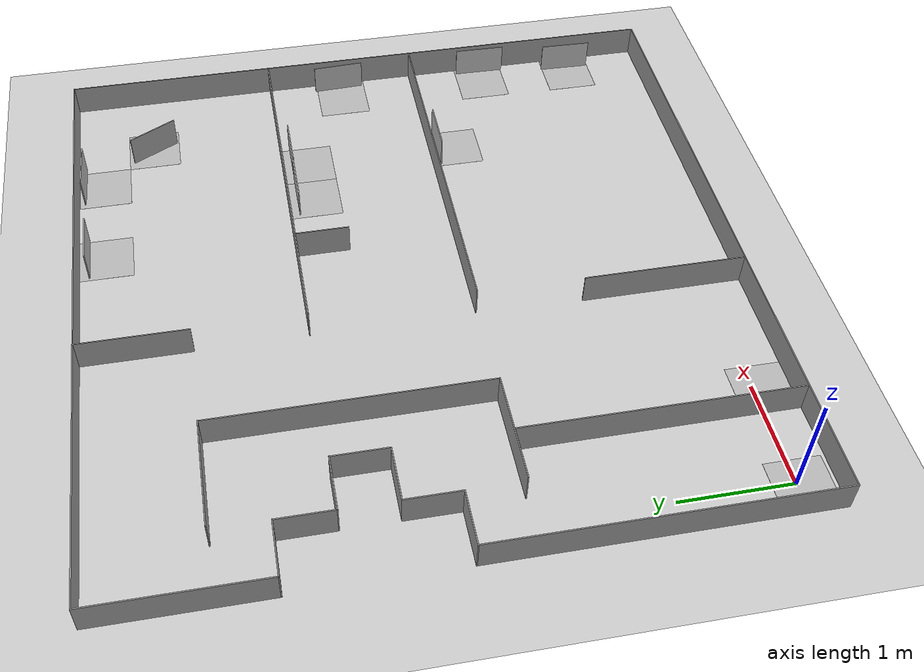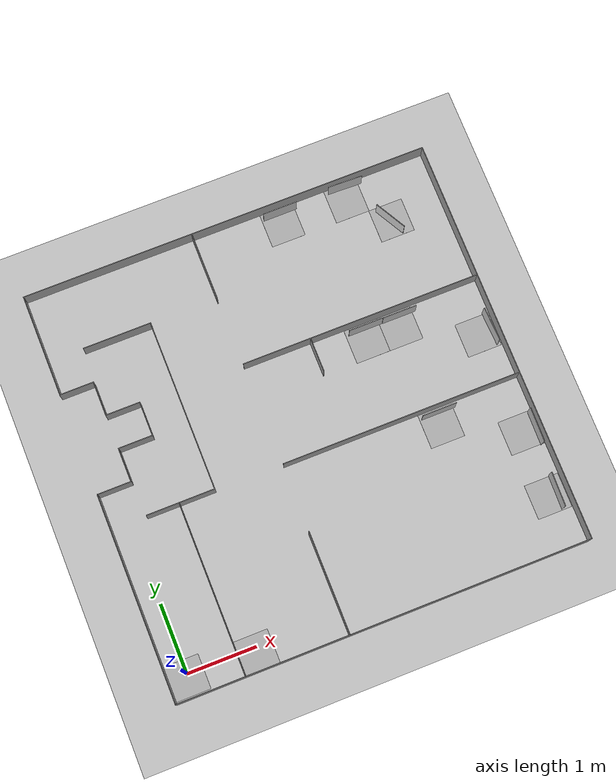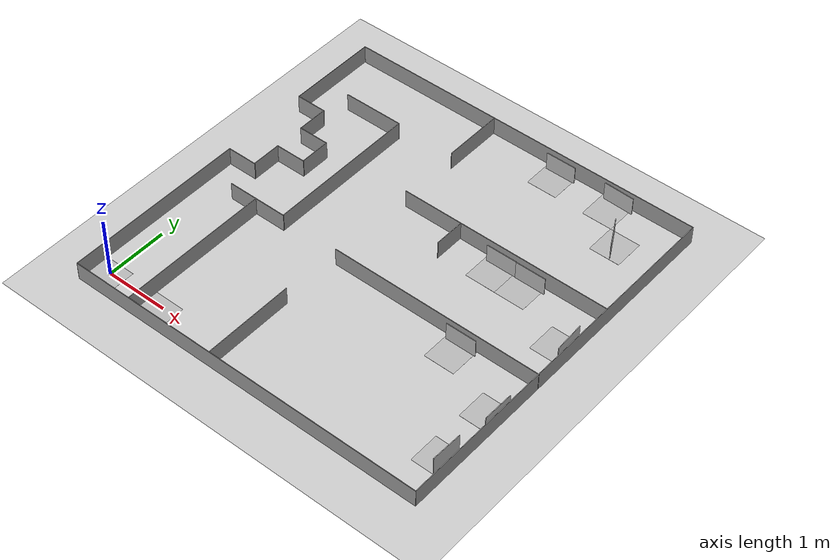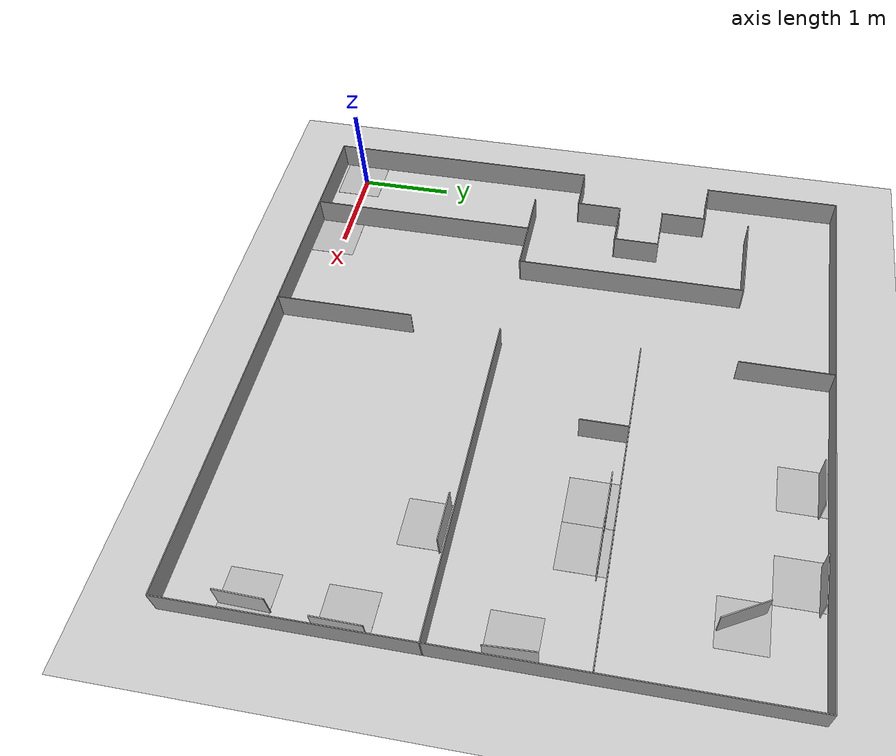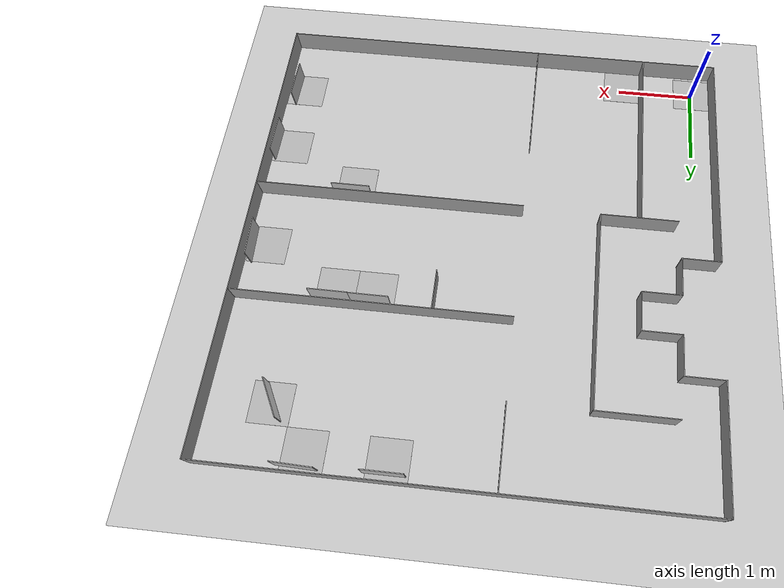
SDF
<sdf version="1.6">
 <world name="default">
  <light name="sun" type="directional">
   <pose>0 0 10 0 -0 0</pose>
   <diffuse>0.8 0.8 0.8 1</diffuse>
   <specular>0.2 0.2 0.2 1</specular>
   <attenuation>
    <range>1000</range>
    <constant>0.9</constant>
    <linear>0.01</linear>
    <quadratic>0.001</quadratic>
   </attenuation>
   <direction>-0.5 0.1 -0.9</direction>
  </light>
  <model name="ground_plane">
   <static>1</static>
   <link name="link">
    <collision name="collision">
     <geometry><plane><normal>0 0 1</normal><size>100 100</size></plane></geometry>
     <surface>
      <contact><collide_bitmask>65535</collide_bitmask></contact>
      <friction><ode><mu>100</mu><mu2>50</mu2></ode></friction>
     </surface>
    </collision>
    <visual name="visual">
     <cast_shadows>0</cast_shadows>
     <geometry><plane><normal>0 0 1</normal><size>100 100</size></plane></geometry>
     <material>
      <script><uri>file://media/materials/scripts/gazebo.material</uri><name>Gazebo/Grey</name></script>
     </material>
    </visual>
   </link>
  </model>
  <gravity>0 0 -9.8</gravity>
  <magnetic_field>6e-06 2.3e-05 -4.2e-05</magnetic_field>
  <atmosphere type="adiabatic"/>
  <physics name="default_physics" default="0" type="ode">
   <max_step_size>0.001</max_step_size>
   <real_time_factor>1</real_time_factor>
   <real_time_update_rate>1000</real_time_update_rate>
  </physics>
  <scene><ambient>0.4 0.4 0.4 1</ambient><background>0.7 0.7 0.7 1</background><shadows>1</shadows></scene>
  <audio><device>default</device></audio>
  <spherical_coordinates>
   <surface_model>EARTH_WGS84</surface_model>
   <latitude_deg>0</latitude_deg>
   <longitude_deg>0</longitude_deg>
   <elevation>0</elevation>
   <heading_deg>0</heading_deg>
  </spherical_coordinates>
  <model name="arena">
   <pose>2.72717 2.66142 0 0 -0 0</pose>
   <link name="Wall_1">
    <collision name="Wall_1_Collision">
     <geometry><box><size>6 0.01 0.3</size></box></geometry>
     <pose>0 0 0.15 0 -0 0</pose>
    </collision>
    <visual name="Wall_1_Visual">
     <pose>0 0 0.15 0 -0 0</pose>
     <geometry><box><size>6 0.01 0.3</size></box></geometry>
     <material>
      <script><uri>file://media/materials/scripts/gazebo.material</uri><name>Gazebo/Grey</name></script>
      <ambient>1 1 1 1</ambient>
     </material>
     <meta><layer>0</layer></meta>
    </visual>
    <pose>0.001988 -2.99751 0 0 -0 0</pose>
   </link>
   <link name="Wall_11">
    <collision name="Wall_11_Collision">
     <geometry><box><size>1.5 0.01 0.3</size></box></geometry>
     <pose>0 0 0.15 0 -0 0</pose>
    </collision>
    <visual name="Wall_11_Visual">
     <pose>0 0 0.15 0 -0 0</pose>
     <geometry><box><size>1.5 0.01 0.3</size></box></geometry>
     <material>
      <script><uri>file://media/materials/scripts/gazebo.material</uri><name>Gazebo/Grey</name></script>
      <ambient>1 1 1 1</ambient>
     </material>
     <meta><layer>0</layer></meta>
    </visual>
    <pose>-2.99841 2.25251 0 0 -0 1.5708</pose>
   </link>
   <link name="Wall_20">
    <collision name="Wall_20_Collision">
     <geometry><box><size>0.5 0.01 0.3</size></box></geometry>
     <pose>0 0 0.15 0 -0 0</pose>
    </collision>
    <visual name="Wall_20_Visual">
     <pose>0 0 0.15 0 -0 0</pose>
     <geometry><box><size>0.5 0.01 0.3</size></box></geometry>
     <material>
      <script><uri>file://media/materials/scripts/gazebo.material</uri><name>Gazebo/Grey</name></script>
      <ambient>1 1 1 1</ambient>
     </material>
     <meta><layer>0</layer></meta>
    </visual>
    <pose>-2.75425 1.50057 0 0 -0 0</pose>
   </link>
   <link name="Wall_22">
    <collision name="Wall_22_Collision">
     <geometry><box><size>0.5 0.01 0.3</size></box></geometry>
     <pose>0 0 0.15 0 -0 0</pose>
    </collision>
    <visual name="Wall_22_Visual">
     <pose>0 0 0.15 0 -0 0</pose>
     <geometry><box><size>0.5 0.01 0.3</size></box></geometry>
     <material>
      <script><uri>file://media/materials/scripts/gazebo.material</uri><name>Gazebo/Grey</name></script>
      <ambient>1 1 1 1</ambient>
     </material>
     <meta><layer>0</layer></meta>
    </visual>
    <pose>-2.50969 1.25495 0 0 -0 1.5708</pose>
   </link>
   <link name="Wall_24">
    <collision name="Wall_24_Collision">
     <geometry><box><size>0.5 0.01 0.3</size></box></geometry>
     <pose>0 0 0.15 0 -0 0</pose>
    </collision>
    <visual name="Wall_24_Visual">
     <pose>0 0 0.15 0 -0 0</pose>
     <geometry><box><size>0.5 0.01 0.3</size></box></geometry>
     <material>
      <script><uri>file://media/materials/scripts/gazebo.material</uri><name>Gazebo/Grey</name></script>
      <ambient>1 1 1 1</ambient>
     </material>
     <meta><layer>0</layer></meta>
    </visual>
    <pose>-2.26459 1.00122 0 0 -0 0</pose>
   </link>
   <link name="Wall_28">
    <collision name="Wall_28_Collision">
     <geometry><box><size>0.5 0.01 0.3</size></box></geometry>
     <pose>0 0 0.15 0 -0 0</pose>
    </collision>
    <visual name="Wall_28_Visual">
     <pose>0 0 0.15 0 -0 0</pose>
     <geometry><box><size>0.5 0.01 0.3</size></box></geometry>
     <material>
      <script><uri>file://media/materials/scripts/gazebo.material</uri><name>Gazebo/Grey</name></script>
      <ambient>1 1 1 1</ambient>
     </material>
     <meta><layer>0</layer></meta>
    </visual>
    <pose>-2.01503 0.755808 0 0 -0 -1.5708</pose>
   </link>
   <link name="Wall_30">
    <collision name="Wall_30_Collision">
     <geometry><box><size>0.5 0.01 0.3</size></box></geometry>
     <pose>0 0 0.15 0 -0 0</pose>
    </collision>
    <visual name="Wall_30_Visual">
     <pose>0 0 0.15 0 -0 0</pose>
     <geometry><box><size>0.5 0.01 0.3</size></box></geometry>
     <material>
      <script><uri>file://media/materials/scripts/gazebo.material</uri><name>Gazebo/Grey</name></script>
      <ambient>1 1 1 1</ambient>
     </material>
     <meta><layer>0</layer></meta>
    </visual>
    <pose>-2.25991 0.503524 0 0 -0 0</pose>
   </link>
   <link name="Wall_34">
    <collision name="Wall_34_Collision">
     <geometry><box><size>0.5 0.01 0.3</size></box></geometry>
     <pose>0 0 0.15 0 -0 0</pose>
    </collision>
    <visual name="Wall_34_Visual">
     <pose>0 0 0.15 0 -0 0</pose>
     <geometry><box><size>0.5 0.01 0.3</size></box></geometry>
     <material>
      <script><uri>file://media/materials/scripts/gazebo.material</uri><name>Gazebo/Grey</name></script>
      <ambient>1 1 1 1</ambient>
     </material>
     <meta><layer>0</layer></meta>
    </visual>
    <pose>-2.50907 0.257403 0 0 -0 -1.5708</pose>
   </link>
   <link name="Wall_36">
    <collision name="Wall_36_Collision">
     <geometry><box><size>0.5 0.01 0.3</size></box></geometry>
     <pose>0 0 0.15 0 -0 0</pose>
    </collision>
    <visual name="Wall_36_Visual">
     <pose>0 0 0.15 0 -0 0</pose>
     <geometry><box><size>0.5 0.01 0.3</size></box></geometry>
     <material>
      <script><uri>file://media/materials/scripts/gazebo.material</uri><name>Gazebo/Grey</name></script>
      <ambient>1 1 1 1</ambient>
     </material>
     <meta><layer>0</layer></meta>
    </visual>
    <pose>-2.75227 0.011599 0 0 -0 0</pose>
   </link>
   <link name="Wall_38">
    <collision name="Wall_38_Collision">
     <geometry><box><size>3.012 0.01 0.3</size></box></geometry>
     <pose>0 0 0.15 0 -0 0</pose>
    </collision>
    <visual name="Wall_38_Visual">
     <pose>0 0 0.15 0 -0 0</pose>
     <geometry><box><size>3.012 0.01 0.3</size></box></geometry>
     <material>
      <script><uri>file://media/materials/scripts/gazebo.material</uri><name>Gazebo/Grey</name></script>
      <ambient>1 1 1 1</ambient>
     </material>
     <meta><layer>0</layer></meta>
    </visual>
    <pose>-2.99601 -1.49551 0 0 -0 -1.5708</pose>
   </link>
   <link name="Wall_41">
    <collision name="Wall_41_Collision">
     <geometry><box><size>1 0.01 0.3</size></box></geometry>
     <pose>0 0 0.15 0 -0 0</pose>
    </collision>
    <visual name="Wall_41_Visual">
     <pose>0 0 0.15 0 -0 0</pose>
     <geometry><box><size>1 0.01 0.3</size></box></geometry>
     <material>
      <script><uri>file://media/materials/scripts/gazebo.material</uri><name>Gazebo/Grey</name></script>
      <ambient>1 1 1 1</ambient>
     </material>
     <meta><layer>0</layer></meta>
    </visual>
    <pose>-0.498279 2.49812 0 0 -0 1.5708</pose>
   </link>
   <link name="Wall_44">
    <collision name="Wall_44_Collision">
     <geometry><box><size>3.5 0.01 0.3</size></box></geometry>
     <pose>0 0 0.15 0 -0 0</pose>
    </collision>
    <visual name="Wall_44_Visual">
     <pose>0 0 0.15 0 -0 0</pose>
     <geometry><box><size>3.5 0.01 0.3</size></box></geometry>
     <material>
      <script><uri>file://media/materials/scripts/gazebo.material</uri><name>Gazebo/Grey</name></script>
      <ambient>1 1 1 1</ambient>
     </material>
     <meta><layer>0</layer></meta>
    </visual>
    <pose>1.25071 0.982331 0 0 -0 0</pose>
   </link>
   <link name="Wall_46">
    <collision name="Wall_46_Collision">
     <geometry><box><size>0.5 0.01 0.3</size></box></geometry>
     <pose>0 0 0.15 0 -0 0</pose>
    </collision>
    <visual name="Wall_46_Visual">
     <pose>0 0 0.15 0 -0 0</pose>
     <geometry><box><size>0.5 0.01 0.3</size></box></geometry>
     <material>
      <script><uri>file://media/materials/scripts/gazebo.material</uri><name>Gazebo/Grey</name></script>
      <ambient>1 1 1 1</ambient>
     </material>
     <meta><layer>0</layer></meta>
    </visual>
    <pose>0.496275 0.729352 0 0 -0 1.5708</pose>
   </link>
   <link name="Wall_48">
    <collision name="Wall_48_Collision">
     <geometry><box><size>3.5 0.01 0.3</size></box></geometry>
     <pose>0 0 0.15 0 -0 0</pose>
    </collision>
    <visual name="Wall_48_Visual">
     <pose>0 0 0.15 0 -0 0</pose>
     <geometry><box><size>3.5 0.01 0.3</size></box></geometry>
     <material>
      <script><uri>file://media/materials/scripts/gazebo.material</uri><name>Gazebo/Grey</name></script>
      <ambient>1 1 1 1</ambient>
     </material>
     <meta><layer>0</layer></meta>
    </visual>
    <pose>1.25425 -0.520404 0 0 -0 0</pose>
   </link>
   <link name="Wall_50">
    <collision name="Wall_50_Collision">
     <geometry><box><size>1.5 0.01 0.3</size></box></geometry>
     <pose>0 0 0.15 0 -0 0</pose>
    </collision>
    <visual name="Wall_50_Visual">
     <pose>0 0 0.15 0 -0 0</pose>
     <geometry><box><size>1.5 0.01 0.3</size></box></geometry>
     <material>
      <script><uri>file://media/materials/scripts/gazebo.material</uri><name>Gazebo/Grey</name></script>
      <ambient>1 1 1 1</ambient>
     </material>
     <meta><layer>0</layer></meta>
    </visual>
    <pose>-0.512233 -2.25115 0 0 -0 -1.5708</pose>
   </link>
   <link name="Wall_52">
    <collision name="Wall_52_Collision">
     <geometry><box><size>2.5 0.01 0.3</size></box></geometry>
     <pose>0 0 0.15 0 -0 0</pose>
    </collision>
    <visual name="Wall_52_Visual">
     <pose>0 0 0.15 0 -0 0</pose>
     <geometry><box><size>2.5 0.01 0.3</size></box></geometry>
     <material>
      <script><uri>file://media/materials/scripts/gazebo.material</uri><name>Gazebo/Grey</name></script>
      <ambient>1 1 1 1</ambient>
     </material>
     <meta><layer>0</layer></meta>
    </visual>
    <pose>-2.00505 -1.74423 0 0 -0 -1.5708</pose>
   </link>
   <link name="Wall_54">
    <collision name="Wall_54_Collision">
     <geometry><box><size>1 0.01 0.3</size></box></geometry>
     <pose>0 0 0.15 0 -0 0</pose>
    </collision>
    <visual name="Wall_54_Visual">
     <pose>0 0 0.15 0 -0 0</pose>
     <geometry><box><size>1 0.01 0.3</size></box></geometry>
     <material>
      <script><uri>file://media/materials/scripts/gazebo.material</uri><name>Gazebo/Grey</name></script>
      <ambient>1 1 1 1</ambient>
     </material>
     <meta><layer>0</layer></meta>
    </visual>
    <pose>-1.98078 -0.499121 0 0 -0 0</pose>
   </link>
   <link name="Wall_56">
    <collision name="Wall_56_Collision">
     <geometry><box><size>2.5 0.01 0.3</size></box></geometry>
     <pose>0 0 0.15 0 -0 0</pose>
    </collision>
    <visual name="Wall_56_Visual">
     <pose>0 0 0.15 0 -0 0</pose>
     <geometry><box><size>2.5 0.01 0.3</size></box></geometry>
     <material>
      <script><uri>file://media/materials/scripts/gazebo.material</uri><name>Gazebo/Grey</name></script>
      <ambient>1 1 1 1</ambient>
     </material>
     <meta><layer>0</layer></meta>
    </visual>
    <pose>-1.48616 0.751059 0 0 -0 -1.5708</pose>
   </link>
   <link name="Wall_58">
    <collision name="Wall_58_Collision">
     <geometry><box><size>1 0.01 0.3</size></box></geometry>
     <pose>0 0 0.15 0 -0 0</pose>
    </collision>
    <visual name="Wall_58_Visual">
     <pose>0 0 0.15 0 -0 0</pose>
     <geometry><box><size>1 0.01 0.3</size></box></geometry>
     <material>
      <script><uri>file://media/materials/scripts/gazebo.material</uri><name>Gazebo/Grey</name></script>
      <ambient>1 1 1 1</ambient>
     </material>
     <meta><layer>0</layer></meta>
    </visual>
    <pose>-1.9786 2.00012 0 0 -0 0</pose>
   </link>
   <link name="Wall_6">
    <collision name="Wall_6_Collision">
     <geometry><box><size>6 0.01 0.3</size></box></geometry>
     <pose>0 0 0.15 0 -0 0</pose>
    </collision>
    <visual name="Wall_6_Visual">
     <pose>0 0 0.15 0 -0 0</pose>
     <geometry><box><size>6 0.01 0.3</size></box></geometry>
     <material>
      <script><uri>file://media/materials/scripts/gazebo.material</uri><name>Gazebo/Grey</name></script>
      <ambient>1 1 1 1</ambient>
     </material>
     <meta><layer>0</layer></meta>
    </visual>
    <pose>2.99837 -0.000334 0 0 -0 -1.5708</pose>
   </link>
   <link name="Wall_8">
    <collision name="Wall_8_Collision">
     <geometry><box><size>6 0.01 0.3</size></box></geometry>
     <pose>0 0 0.15 0 -0 0</pose>
    </collision>
    <visual name="Wall_8_Visual">
     <pose>0 0 0.15 0 -0 0</pose>
     <geometry><box><size>6 0.01 0.3</size></box></geometry>
     <material>
      <script><uri>file://media/materials/scripts/gazebo.material</uri><name>Gazebo/Grey</name></script>
      <ambient>1 1 1 1</ambient>
     </material>
     <meta><layer>0</layer></meta>
    </visual>
    <pose>-0.003034 2.99691 0 0 -0 0</pose>
   </link>
   <static>1</static>
  </model>
  <model name="start_plane">
   <static>1</static>
   <link name="link">
    <collision name="collision">
     <geometry><plane><normal>0 0 1</normal><size>0.5 0.5</size></plane></geometry>
     <surface><friction><ode><mu>100</mu><mu2>50</mu2></ode></friction></surface>
    </collision>
    <visual name="visual">
     <cast_shadows>0</cast_shadows>
     <geometry><plane><normal>0 0 1</normal><size>0.5 0.5</size></plane></geometry>
     <material>
      <script>
       <uri>model://start_plane/materials/scripts</uri>
       <uri>model://start_plane/materials/textures/</uri>
       <name>StartPlane/Image</name>
      </script>
     </material>
    </visual>
   </link>
   <pose>-0.018469 -0.051337 0 0 -0 0</pose>
  </model>
  <model name="end_plane">
   <static>1</static>
   <link name="link">
    <collision name="collision">
     <geometry><plane><normal>0 0 1</normal><size>0.5 0.5</size></plane></geometry>
     <surface><friction><ode><mu>100</mu><mu2>50</mu2></ode></friction></surface>
    </collision>
    <visual name="visual">
     <cast_shadows>0</cast_shadows>
     <geometry><plane><normal>0 0 1</normal><size>0.5 0.5</size></plane></geometry>
     <material>
      <script>
       <uri>model://end_plane/materials/scripts</uri>
       <uri>model://end_plane/materials/textures/</uri>
       <name>EndPlane/Image</name>
      </script>
     </material>
    </visual>
   </link>
   <pose>0.969955 -0.083763 0 0 -0 0</pose>
  </model>
  <model name="end_plane_2">
   <static>1</static>
   <link name="link">
    <collision name="collision">
     <geometry><plane><normal>0 0 1</normal><size>0.5 0.5</size></plane></geometry>
     <surface><friction><ode><mu>100</mu><mu2>50</mu2></ode></friction></surface>
    </collision>
    <visual name="visual">
     <cast_shadows>0</cast_shadows>
     <geometry><plane><normal>0 0 1</normal><size>0.5 0.5</size></plane></geometry>
     <material>
      <script>
       <uri>model://end_plane/materials/scripts</uri>
       <uri>model://end_plane/materials/textures/</uri>
       <name>EndPlane/Image</name>
      </script>
     </material>
    </visual>
   </link>
   <pose>4.47135 5.4022 0 0 -0 0</pose>
  </model>
  <model name="end_plane_1">
   <static>1</static>
   <link name="link">
    <collision name="collision">
     <geometry><plane><normal>0 0 1</normal><size>0.5 0.5</size></plane></geometry>
     <surface><friction><ode><mu>100</mu><mu2>50</mu2></ode></friction></surface>
    </collision>
    <visual name="visual">
     <cast_shadows>0</cast_shadows>
     <geometry><plane><normal>0 0 1</normal><size>0.5 0.5</size></plane></geometry>
     <material>
      <script>
       <uri>model://end_plane/materials/scripts</uri>
       <uri>model://end_plane/materials/textures/</uri>
       <name>EndPlane/Image</name>
      </script>
     </material>
    </visual>
   </link>
   <pose>5.45751 2.89676 0 0 -0 0</pose>
  </model>
  <model name="end_plane_0">
   <static>1</static>
   <link name="link">
    <collision name="collision">
     <geometry><plane><normal>0 0 1</normal><size>0.5 0.5</size></plane></geometry>
     <surface><friction><ode><mu>100</mu><mu2>50</mu2></ode></friction></surface>
    </collision>
    <visual name="visual">
     <cast_shadows>0</cast_shadows>
     <geometry><plane><normal>0 0 1</normal><size>0.5 0.5</size></plane></geometry>
     <material>
      <script>
       <uri>model://end_plane/materials/scripts</uri>
       <uri>model://end_plane/materials/textures/</uri>
       <name>EndPlane/Image</name>
      </script>
     </material>
    </visual>
   </link>
   <pose>5.47441 1.38885 0 0 -0 0</pose>
  </model>
  <model name="end_plane_4">
   <static>1</static>
   <link name="link">
    <collision name="collision">
     <geometry><plane><normal>0 0 1</normal><size>0.5 0.5</size></plane></geometry>
     <surface><friction><ode><mu>100</mu><mu2>50</mu2></ode></friction></surface>
    </collision>
    <visual name="visual">
     <cast_shadows>0</cast_shadows>
     <geometry><plane><normal>0 0 1</normal><size>0.5 0.5</size></plane></geometry>
     <material>
      <script>
       <uri>model://end_plane/materials/scripts</uri>
       <uri>model://end_plane/materials/textures/</uri>
       <name>EndPlane/Image</name>
      </script>
     </material>
    </visual>
   </link>
   <pose>3.4935 5.40484 0 0 -0 0</pose>
  </model>
  <model name="end_plane_3">
   <static>1</static>
   <link name="link">
    <collision name="collision">
     <geometry><plane><normal>0 0 1</normal><size>0.5 0.5</size></plane></geometry>
     <surface><friction><ode><mu>100</mu><mu2>50</mu2></ode></friction></surface>
    </collision>
    <visual name="visual">
     <cast_shadows>0</cast_shadows>
     <geometry><plane><normal>0 0 1</normal><size>0.5 0.5</size></plane></geometry>
     <material>
      <script>
       <uri>model://end_plane/materials/scripts</uri>
       <uri>model://end_plane/materials/textures/</uri>
       <name>EndPlane/Image</name>
      </script>
     </material>
    </visual>
   </link>
   <pose>4.96459 4.90196 0 0 -0 0</pose>
  </model>
  <model name="end_plane_6">
   <static>1</static>
   <link name="link">
    <collision name="collision">
     <geometry><plane><normal>0 0 1</normal><size>0.5 0.5</size></plane></geometry>
     <surface><friction><ode><mu>100</mu><mu2>50</mu2></ode></friction></surface>
    </collision>
    <visual name="visual">
     <cast_shadows>0</cast_shadows>
     <geometry><plane><normal>0 0 1</normal><size>0.5 0.5</size></plane></geometry>
     <material>
      <script>
       <uri>model://end_plane/materials/scripts</uri>
       <uri>model://end_plane/materials/textures/</uri>
       <name>EndPlane/Image</name>
      </script>
     </material>
    </visual>
   </link>
   <pose>3.97499 3.38665 0 0 -0 0</pose>
  </model>
  <model name="end_plane_5">
   <static>1</static>
   <link name="link">
    <collision name="collision">
     <geometry><plane><normal>0 0 1</normal><size>0.5 0.5</size></plane></geometry>
     <surface><friction><ode><mu>100</mu><mu2>50</mu2></ode></friction></surface>
    </collision>
    <visual name="visual">
     <cast_shadows>0</cast_shadows>
     <geometry><plane><normal>0 0 1</normal><size>0.5 0.5</size></plane></geometry>
     <material>
      <script>
       <uri>model://end_plane/materials/scripts</uri>
       <uri>model://end_plane/materials/textures/</uri>
       <name>EndPlane/Image</name>
      </script>
     </material>
    </visual>
   </link>
   <pose>4.4716 3.38614 0 0 -0 0</pose>
  </model>
  <model name="end_plane_7">
   <static>1</static>
   <link name="link">
    <collision name="collision">
     <geometry><plane><normal>0 0 1</normal><size>0.5 0.5</size></plane></geometry>
     <surface><friction><ode><mu>100</mu><mu2>50</mu2></ode></friction></surface>
    </collision>
    <visual name="visual">
     <cast_shadows>0</cast_shadows>
     <geometry><plane><normal>0 0 1</normal><size>0.5 0.5</size></plane></geometry>
     <material>
      <script>
       <uri>model://end_plane/materials/scripts</uri>
       <uri>model://end_plane/materials/textures/</uri>
       <name>EndPlane/Image</name>
      </script>
     </material>
    </visual>
   </link>
   <pose>4.47818 1.88654 0 0 -0 0</pose>
  </model>
  <model name="end_plane_9">
   <static>1</static>
   <link name="link">
    <collision name="collision">
     <geometry><plane><normal>0 0 1</normal><size>0.5 0.5</size></plane></geometry>
     <surface><friction><ode><mu>100</mu><mu2>50</mu2></ode></friction></surface>
    </collision>
    <visual name="visual">
     <cast_shadows>0</cast_shadows>
     <geometry><plane><normal>0 0 1</normal><size>0.5 0.5</size></plane></geometry>
     <material>
      <script>
       <uri>model://end_plane/materials/scripts</uri>
       <uri>model://end_plane/materials/textures/</uri>
       <name>EndPlane/Image</name>
      </script>
     </material>
    </visual>
   </link>
   <pose>5.46392 0.435037 0 0 -0 0</pose>
  </model>
  <model name="07-burger">
   <link name="link_0">
    <inertial>
     <mass>1</mass>
     <inertia>
      <ixx>0.166667</ixx>
      <ixy>0</ixy>
      <ixz>0</ixz>
      <iyy>0.166667</iyy>
      <iyz>0</iyz>
      <izz>0.166667</izz>
     </inertia>
    </inertial>
    <visual name="visual">
     <geometry><box><size>0.5 0.01 0.3</size></box></geometry>
     <material>
      <script>
       <uri>model://07-burger/materials/scripts</uri>
       <uri>model://07-burger/materials/textures/</uri>
       <name>Targets/07-burger</name>
      </script>
     </material>
    </visual>
    <collision name="collision">
     <geometry><box><size>0.5 0.01 0.3</size></box></geometry>
     <surface>
      <friction>
       <ode><mu>1</mu><mu2>1</mu2><fdir1>0 0 0</fdir1><slip1>0</slip1><slip2>0</slip2></ode>
       <torsional>
        <coefficient>1</coefficient>
        <patch_radius>0</patch_radius>
        <surface_radius>0</surface_radius>
        <use_patch_radius>1</use_patch_radius>
        <ode><slip>0</slip></ode>
       </torsional>
      </friction>
      <bounce><restitution_coefficient>0</restitution_coefficient><threshold>1e+06</threshold></bounce>
      <contact>
       <collide_without_contact>0</collide_without_contact>
       <collide_without_contact_bitmask>1</collide_without_contact_bitmask>
       <collide_bitmask>1</collide_bitmask>
       <ode>
        <soft_cfm>0</soft_cfm>
        <soft_erp>0.2</soft_erp>
        <kp>1e+13</kp>
        <kd>1</kd>
        <max_vel>0.01</max_vel>
        <min_depth>0</min_depth>
       </ode>
       <bullet>
        <split_impulse>1</split_impulse>
        <split_impulse_penetration_threshold>-0.01</split_impulse_penetration_threshold>
        <soft_cfm>0</soft_cfm>
        <soft_erp>0.2</soft_erp>
        <kp>1e+13</kp>
        <kd>1</kd>
       </bullet>
      </contact>
     </surface>
    </collision>
   </link>
   <static>0</static>
   <pose>4.51905 5.58895 0.149996 0 0 -0.03029</pose>
  </model>
  <model name="08-chair">
   <link name="link_0">
    <inertial>
     <mass>1</mass>
     <inertia>
      <ixx>0.166667</ixx>
      <ixy>0</ixy>
      <ixz>0</ixz>
      <iyy>0.166667</iyy>
      <iyz>0</iyz>
      <izz>0.166667</izz>
     </inertia>
    </inertial>
    <visual name="visual">
     <geometry><box><size>0.5 0.01 0.3</size></box></geometry>
     <material>
      <script>
       <uri>model://08-chair/materials/scripts</uri>
       <uri>model://08-chair/materials/textures/</uri>
       <name>Targets/08-chair</name>
      </script>
     </material>
    </visual>
    <collision name="collision">
     <geometry><box><size>0.5 0.01 0.3</size></box></geometry>
     <surface>
      <friction>
       <ode><mu>1</mu><mu2>1</mu2><fdir1>0 0 0</fdir1><slip1>0</slip1><slip2>0</slip2></ode>
       <torsional>
        <coefficient>1</coefficient>
        <patch_radius>0</patch_radius>
        <surface_radius>0</surface_radius>
        <use_patch_radius>1</use_patch_radius>
        <ode><slip>0</slip></ode>
       </torsional>
      </friction>
      <bounce><restitution_coefficient>0</restitution_coefficient><threshold>1e+06</threshold></bounce>
      <contact>
       <collide_without_contact>0</collide_without_contact>
       <collide_without_contact_bitmask>1</collide_without_contact_bitmask>
       <collide_bitmask>1</collide_bitmask>
       <ode>
        <soft_cfm>0</soft_cfm>
        <soft_erp>0.2</soft_erp>
        <kp>1e+13</kp>
        <kd>1</kd>
        <max_vel>0.01</max_vel>
        <min_depth>0</min_depth>
       </ode>
       <bullet>
        <split_impulse>1</split_impulse>
        <split_impulse_penetration_threshold>-0.01</split_impulse_penetration_threshold>
        <soft_cfm>0</soft_cfm>
        <soft_erp>0.2</soft_erp>
        <kp>1e+13</kp>
        <kd>1</kd>
       </bullet>
      </contact>
     </surface>
    </collision>
   </link>
   <static>0</static>
   <pose>3.52036 5.56245 0.149997 -2e-06 -0 -0</pose>
  </model>
  <model name="08-table">
   <link name="link_0">
    <inertial>
     <mass>1</mass>
     <inertia>
      <ixx>0.166667</ixx>
      <ixy>0</ixy>
      <ixz>0</ixz>
      <iyy>0.166667</iyy>
      <iyz>0</iyz>
      <izz>0.166667</izz>
     </inertia>
    </inertial>
    <visual name="visual">
     <geometry><box><size>0.5 0.01 0.3</size></box></geometry>
     <material>
      <script>
       <uri>model://08-table/materials/scripts</uri>
       <uri>model://08-table/materials/textures/</uri>
       <name>Targets/08-table</name>
      </script>
     </material>
    </visual>
    <collision name="collision">
     <geometry><box><size>0.5 0.01 0.3</size></box></geometry>
     <surface>
      <friction>
       <ode><mu>1</mu><mu2>1</mu2><fdir1>0 0 0</fdir1><slip1>0</slip1><slip2>0</slip2></ode>
       <torsional>
        <coefficient>1</coefficient>
        <patch_radius>0</patch_radius>
        <surface_radius>0</surface_radius>
        <use_patch_radius>1</use_patch_radius>
        <ode><slip>0</slip></ode>
       </torsional>
      </friction>
      <bounce><restitution_coefficient>0</restitution_coefficient><threshold>1e+06</threshold></bounce>
      <contact>
       <collide_without_contact>0</collide_without_contact>
       <collide_without_contact_bitmask>1</collide_without_contact_bitmask>
       <collide_bitmask>1</collide_bitmask>
       <ode>
        <soft_cfm>0</soft_cfm>
        <soft_erp>0.2</soft_erp>
        <kp>1e+13</kp>
        <kd>1</kd>
        <max_vel>0.01</max_vel>
        <min_depth>0</min_depth>
       </ode>
       <bullet>
        <split_impulse>1</split_impulse>
        <split_impulse_penetration_threshold>-0.01</split_impulse_penetration_threshold>
        <soft_cfm>0</soft_cfm>
        <soft_erp>0.2</soft_erp>
        <kp>1e+13</kp>
        <kd>1</kd>
       </bullet>
      </contact>
     </surface>
    </collision>
   </link>
   <static>0</static>
   <pose>4.92758 4.8875 0.149998 -1e-06 -0 -1.06851</pose>
  </model>
  <model name="04-tv-2">
   <link name="link_0">
    <inertial>
     <mass>1</mass>
     <inertia>
      <ixx>0.166667</ixx>
      <ixy>0</ixy>
      <ixz>0</ixz>
      <iyy>0.166667</iyy>
      <iyz>0</iyz>
      <izz>0.166667</izz>
     </inertia>
    </inertial>
    <visual name="visual">
     <geometry><box><size>0.5 0.01 0.3</size></box></geometry>
     <material>
      <script>
       <uri>model://04-tv-2/materials/scripts</uri>
       <uri>model://04-tv-2/materials/textures/</uri>
       <name>Targets/04-tv-2</name>
      </script>
     </material>
    </visual>
    <collision name="collision">
     <geometry><box><size>0.5 0.01 0.3</size></box></geometry>
     <surface>
      <friction>
       <ode><mu>1</mu><mu2>1</mu2><fdir1>0 0 0</fdir1><slip1>0</slip1><slip2>0</slip2></ode>
       <torsional>
        <coefficient>1</coefficient>
        <patch_radius>0</patch_radius>
        <surface_radius>0</surface_radius>
        <use_patch_radius>1</use_patch_radius>
        <ode><slip>0</slip></ode>
       </torsional>
      </friction>
      <bounce><restitution_coefficient>0</restitution_coefficient><threshold>1e+06</threshold></bounce>
      <contact>
       <collide_without_contact>0</collide_without_contact>
       <collide_without_contact_bitmask>1</collide_without_contact_bitmask>
       <collide_bitmask>1</collide_bitmask>
       <ode>
        <soft_cfm>0</soft_cfm>
        <soft_erp>0.2</soft_erp>
        <kp>1e+13</kp>
        <kd>1</kd>
        <max_vel>0.01</max_vel>
        <min_depth>0</min_depth>
       </ode>
       <bullet>
        <split_impulse>1</split_impulse>
        <split_impulse_penetration_threshold>-0.01</split_impulse_penetration_threshold>
        <soft_cfm>0</soft_cfm>
        <soft_erp>0.2</soft_erp>
        <kp>1e+13</kp>
        <kd>1</kd>
       </bullet>
      </contact>
     </surface>
    </collision>
   </link>
   <static>0</static>
   <pose>4.01532 3.54813 0.149997 -1e-06 0 0</pose>
  </model>
  <model name="04-tv-1">
   <link name="link_0">
    <inertial>
     <mass>1</mass>
     <inertia>
      <ixx>0.166667</ixx>
      <ixy>0</ixy>
      <ixz>0</ixz>
      <iyy>0.166667</iyy>
      <iyz>0</iyz>
      <izz>0.166667</izz>
     </inertia>
    </inertial>
    <visual name="visual">
     <geometry><box><size>0.5 0.01 0.3</size></box></geometry>
     <material>
      <script>
       <uri>model://04-tv-1/materials/scripts</uri>
       <uri>model://04-tv-1/materials/textures/</uri>
       <name>Targets/04-tv-1</name>
      </script>
     </material>
    </visual>
    <collision name="collision">
     <geometry><box><size>0.5 0.01 0.3</size></box></geometry>
     <surface>
      <friction>
       <ode><mu>1</mu><mu2>1</mu2><fdir1>0 0 0</fdir1><slip1>0</slip1><slip2>0</slip2></ode>
       <torsional>
        <coefficient>1</coefficient>
        <patch_radius>0</patch_radius>
        <surface_radius>0</surface_radius>
        <use_patch_radius>1</use_patch_radius>
        <ode><slip>0</slip></ode>
       </torsional>
      </friction>
      <bounce><restitution_coefficient>0</restitution_coefficient><threshold>1e+06</threshold></bounce>
      <contact>
       <collide_without_contact>0</collide_without_contact>
       <collide_without_contact_bitmask>1</collide_without_contact_bitmask>
       <collide_bitmask>1</collide_bitmask>
       <ode>
        <soft_cfm>0</soft_cfm>
        <soft_erp>0.2</soft_erp>
        <kp>1e+13</kp>
        <kd>1</kd>
        <max_vel>0.01</max_vel>
        <min_depth>0</min_depth>
       </ode>
       <bullet>
        <split_impulse>1</split_impulse>
        <split_impulse_penetration_threshold>-0.01</split_impulse_penetration_threshold>
        <soft_cfm>0</soft_cfm>
        <soft_erp>0.2</soft_erp>
        <kp>1e+13</kp>
        <kd>1</kd>
       </bullet>
      </contact>
     </surface>
    </collision>
   </link>
   <static>0</static>
   <pose>4.51801 3.54454 0.149993 -1e-06 0 0</pose>
  </model>
  <model name="02-dog">
   <link name="link_0">
    <inertial>
     <mass>1</mass>
     <inertia>
      <ixx>0.166667</ixx>
      <ixy>0</ixy>
      <ixz>0</ixz>
      <iyy>0.166667</iyy>
      <iyz>0</iyz>
      <izz>0.166667</izz>
     </inertia>
    </inertial>
    <visual name="visual">
     <geometry><box><size>0.5 0.01 0.3</size></box></geometry>
     <material>
      <script>
       <uri>model://02-dog/materials/scripts</uri>
       <uri>model://02-dog/materials/textures/</uri>
       <name>Targets/02-dog</name>
      </script>
     </material>
    </visual>
    <collision name="collision">
     <geometry><box><size>0.5 0.01 0.3</size></box></geometry>
     <surface>
      <friction>
       <ode><mu>1</mu><mu2>1</mu2><fdir1>0 0 0</fdir1><slip1>0</slip1><slip2>0</slip2></ode>
       <torsional>
        <coefficient>1</coefficient>
        <patch_radius>0</patch_radius>
        <surface_radius>0</surface_radius>
        <use_patch_radius>1</use_patch_radius>
        <ode><slip>0</slip></ode>
       </torsional>
      </friction>
      <bounce><restitution_coefficient>0</restitution_coefficient><threshold>1e+06</threshold></bounce>
      <contact>
       <collide_without_contact>0</collide_without_contact>
       <collide_without_contact_bitmask>1</collide_without_contact_bitmask>
       <collide_bitmask>1</collide_bitmask>
       <ode>
        <soft_cfm>0</soft_cfm>
        <soft_erp>0.2</soft_erp>
        <kp>1e+13</kp>
        <kd>1</kd>
        <max_vel>0.01</max_vel>
        <min_depth>0</min_depth>
       </ode>
       <bullet>
        <split_impulse>1</split_impulse>
        <split_impulse_penetration_threshold>-0.01</split_impulse_penetration_threshold>
        <soft_cfm>0</soft_cfm>
        <soft_erp>0.2</soft_erp>
        <kp>1e+13</kp>
        <kd>1</kd>
       </bullet>
      </contact>
     </surface>
    </collision>
   </link>
   <static>0</static>
   <pose>5.64156 2.91445 0.149997 -2e-06 -0 -1.5255</pose>
  </model>
  <model name="08-table_0">
   <link name="link_0">
    <inertial>
     <mass>1</mass>
     <inertia>
      <ixx>0.166667</ixx>
      <ixy>0</ixy>
      <ixz>0</ixz>
      <iyy>0.166667</iyy>
      <iyz>0</iyz>
      <izz>0.166667</izz>
     </inertia>
    </inertial>
    <visual name="visual">
     <geometry><box><size>0.5 0.01 0.3</size></box></geometry>
     <material>
      <script>
       <uri>model://08-table/materials/scripts</uri>
       <uri>model://08-table/materials/textures/</uri>
       <name>Targets/08-table</name>
      </script>
     </material>
    </visual>
    <collision name="collision">
     <geometry><box><size>0.5 0.01 0.3</size></box></geometry>
     <surface>
      <friction>
       <ode><mu>1</mu><mu2>1</mu2><fdir1>0 0 0</fdir1><slip1>0</slip1><slip2>0</slip2></ode>
       <torsional>
        <coefficient>1</coefficient>
        <patch_radius>0</patch_radius>
        <surface_radius>0</surface_radius>
        <use_patch_radius>1</use_patch_radius>
        <ode><slip>0</slip></ode>
       </torsional>
      </friction>
      <bounce><restitution_coefficient>0</restitution_coefficient><threshold>1e+06</threshold></bounce>
      <contact>
       <collide_without_contact>0</collide_without_contact>
       <collide_without_contact_bitmask>1</collide_without_contact_bitmask>
       <collide_bitmask>1</collide_bitmask>
       <ode>
        <soft_cfm>0</soft_cfm>
        <soft_erp>0.2</soft_erp>
        <kp>1e+13</kp>
        <kd>1</kd>
        <max_vel>0.01</max_vel>
        <min_depth>0</min_depth>
       </ode>
       <bullet>
        <split_impulse>1</split_impulse>
        <split_impulse_penetration_threshold>-0.01</split_impulse_penetration_threshold>
        <soft_cfm>0</soft_cfm>
        <soft_erp>0.2</soft_erp>
        <kp>1e+13</kp>
        <kd>1</kd>
       </bullet>
      </contact>
     </surface>
    </collision>
   </link>
   <static>0</static>
   <pose>4.50411 2.0617 0.149997 -1e-06 -0 -0</pose>
  </model>
  <model name="02-rats">
   <link name="link_0">
    <inertial>
     <mass>1</mass>
     <inertia>
      <ixx>0.166667</ixx>
      <ixy>0</ixy>
      <ixz>0</ixz>
      <iyy>0.166667</iyy>
      <iyz>0</iyz>
      <izz>0.166667</izz>
     </inertia>
    </inertial>
    <visual name="visual">
     <geometry><box><size>0.5 0.01 0.3</size></box></geometry>
     <material>
      <script>
       <uri>model://02-rats/materials/scripts</uri>
       <uri>model://02-rats/materials/textures/</uri>
       <name>Targets/02-rats</name>
      </script>
     </material>
    </visual>
    <collision name="collision">
     <geometry><box><size>0.5 0.01 0.3</size></box></geometry>
     <surface>
      <friction>
       <ode><mu>1</mu><mu2>1</mu2><fdir1>0 0 0</fdir1><slip1>0</slip1><slip2>0</slip2></ode>
       <torsional>
        <coefficient>1</coefficient>
        <patch_radius>0</patch_radius>
        <surface_radius>0</surface_radius>
        <use_patch_radius>1</use_patch_radius>
        <ode><slip>0</slip></ode>
       </torsional>
      </friction>
      <bounce><restitution_coefficient>0</restitution_coefficient><threshold>1e+06</threshold></bounce>
      <contact>
       <collide_without_contact>0</collide_without_contact>
       <collide_without_contact_bitmask>1</collide_without_contact_bitmask>
       <collide_bitmask>1</collide_bitmask>
       <ode>
        <soft_cfm>0</soft_cfm>
        <soft_erp>0.2</soft_erp>
        <kp>1e+13</kp>
        <kd>1</kd>
        <max_vel>0.01</max_vel>
        <min_depth>0</min_depth>
       </ode>
       <bullet>
        <split_impulse>1</split_impulse>
        <split_impulse_penetration_threshold>-0.01</split_impulse_penetration_threshold>
        <soft_cfm>0</soft_cfm>
        <soft_erp>0.2</soft_erp>
        <kp>1e+13</kp>
        <kd>1</kd>
       </bullet>
      </contact>
     </surface>
    </collision>
   </link>
   <static>0</static>
   <pose>5.66399 1.37548 0.149993 2e-06 -0 -1.58462</pose>
  </model>
  <model name="00-blank">
   <link name="link_0">
    <inertial>
     <mass>1</mass>
     <inertia>
      <ixx>0.166667</ixx>
      <ixy>0</ixy>
      <ixz>0</ixz>
      <iyy>0.166667</iyy>
      <iyz>0</iyz>
      <izz>0.166667</izz>
     </inertia>
    </inertial>
    <visual name="visual">
     <geometry><box><size>0.5 0.01 0.3</size></box></geometry>
     <material>
      <script>
       <uri>model://00-blank/materials/scripts</uri>
       <uri>model://00-blank/materials/textures/</uri>
       <name>Targets/00-blank</name>
      </script>
     </material>
    </visual>
    <collision name="collision">
     <geometry><box><size>0.5 0.01 0.3</size></box></geometry>
     <surface>
      <friction>
       <ode><mu>1</mu><mu2>1</mu2><fdir1>0 0 0</fdir1><slip1>0</slip1><slip2>0</slip2></ode>
       <torsional>
        <coefficient>1</coefficient>
        <patch_radius>0</patch_radius>
        <surface_radius>0</surface_radius>
        <use_patch_radius>1</use_patch_radius>
        <ode><slip>0</slip></ode>
       </torsional>
      </friction>
      <bounce><restitution_coefficient>0</restitution_coefficient><threshold>1e+06</threshold></bounce>
      <contact>
       <collide_without_contact>0</collide_without_contact>
       <collide_without_contact_bitmask>1</collide_without_contact_bitmask>
       <collide_bitmask>1</collide_bitmask>
       <ode>
        <soft_cfm>0</soft_cfm>
        <soft_erp>0.2</soft_erp>
        <kp>1e+13</kp>
        <kd>1</kd>
        <max_vel>0.01</max_vel>
        <min_depth>0</min_depth>
       </ode>
       <bullet>
        <split_impulse>1</split_impulse>
        <split_impulse_penetration_threshold>-0.01</split_impulse_penetration_threshold>
        <soft_cfm>0</soft_cfm>
        <soft_erp>0.2</soft_erp>
        <kp>1e+13</kp>
        <kd>1</kd>
       </bullet>
      </contact>
     </surface>
    </collision>
   </link>
   <static>0</static>
   <pose>5.57677 0.446921 0.149992 -1e-06 -0 -1.5965</pose>
  </model>
 </world>
</sdf>
